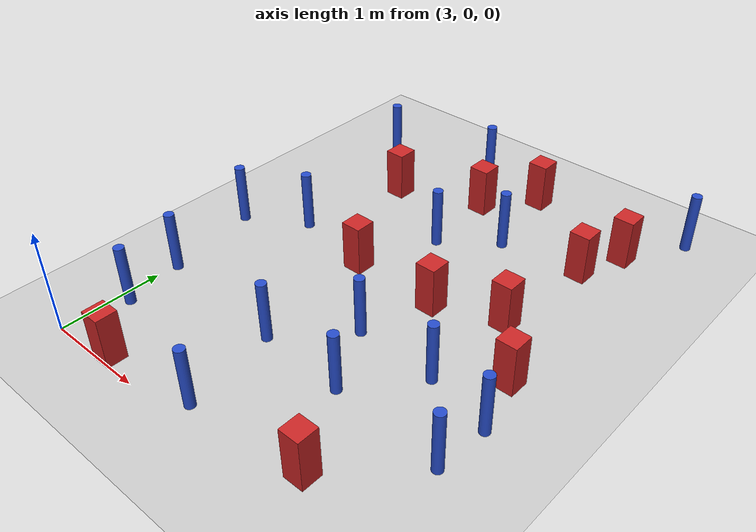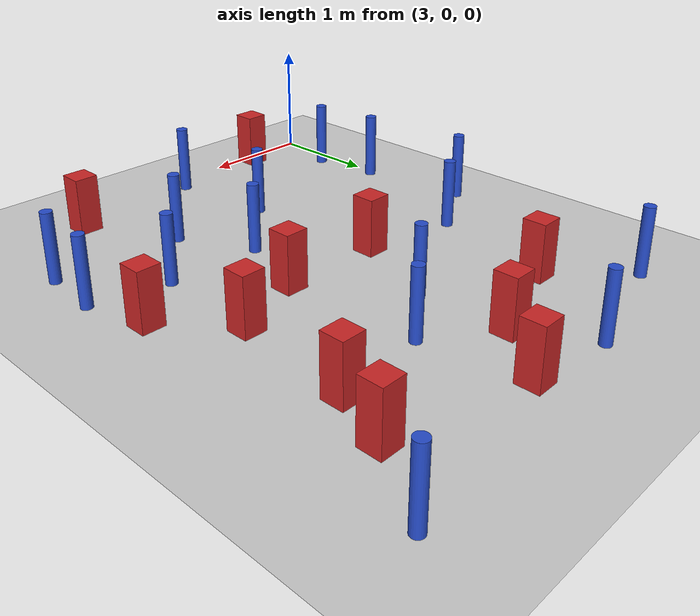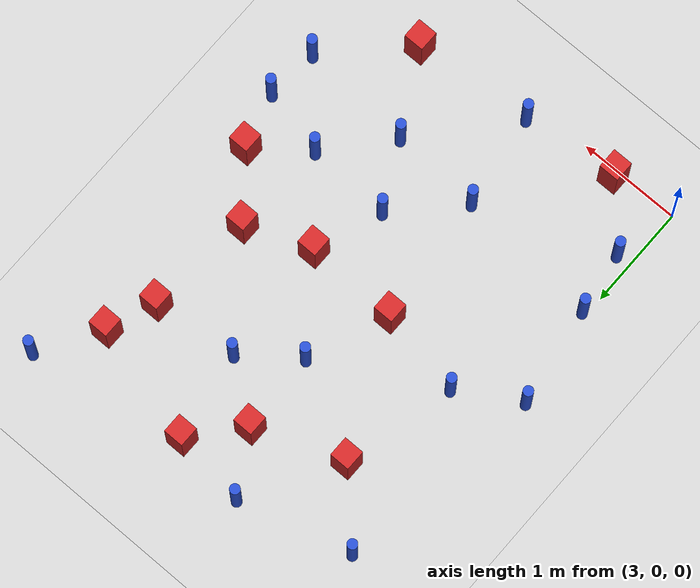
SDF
<sdf version="1.6">
 <world name="default">
  <model name="ground_plane">
   <static>1</static>
   <link name="link">
    <collision name="collision">
     <geometry><plane><normal>0 0 1</normal><size>100 100</size></plane></geometry>
     <surface><friction><ode><mu>100</mu><mu2>50</mu2></ode></friction></surface>
    </collision>
    <visual name="visual">
     <cast_shadows>0</cast_shadows>
     <geometry><plane><normal>0 0 1</normal><size>100 100</size></plane></geometry>
     <material>
      <ambient>1.0 1.0 1.0 1.0</ambient>
      <diffuse>0.8 0.8 0.8 1.0</diffuse>
      <specular>0.01 0.01 0.01 1.000000</specular>
     </material>
    </visual>
   </link>
  </model>
  <model name="pole_obstacle8">
   <static>true</static>
   <pose>4.41853651223 1.09801838335 -9.47619616065e-06 5.49618799738e-07 2.36310414071e-07 -1.55090534796e-07</pose>
   <link name="link">
    <pose>0 0 0.3 0 -0 0</pose>
    <inertial>
     <mass>1</mass>
     <inertia><ixx>0.145833</ixx><ixy>0</ixy><ixz>0</ixz><iyy>0.145833</iyy><iyz>0</iyz><izz>0.125</izz></inertia>
    </inertial>
    <collision name="collision">
     <geometry><cylinder><radius>0.05</radius><length>.6</length></cylinder></geometry>
    </collision>
    <visual name="visual">
     <geometry><cylinder><radius>0.05</radius><length>.6</length></cylinder></geometry>
     <material>
      <script><name>Gazebo/Blue</name><uri>file://media/materials/scripts/gazebo.material</uri></script>
     </material>
    </visual>
   </link>
  </model>
  <model name="square_post_obstacle24">
   <static>true</static>
   <pose>4.30198293495 2.35617730267 -6.11067671241e-07 -5.50515727128e-06 -8.79689657224e-07 2.37013304536e-05</pose>
   <link name="link">
    <pose>0 0 0.25 0 -0 0</pose>
    <inertial>
     <mass>100</mass>
     <inertia>
      <ixx>0.166667</ixx>
      <ixy>0</ixy>
      <ixz>0</ixz>
      <iyy>0.166667</iyy>
      <iyz>0</iyz>
      <izz>0.166667</izz>
     </inertia>
    </inertial>
    <collision name="collision"><geometry><box><size>.2 .2 .5</size></box></geometry></collision>
    <visual name="visual">
     <geometry><box><size>.2 .2 .5</size></box></geometry>
     <material>
      <script><name>Gazebo/Red</name><uri>file://media/materials/scripts/gazebo.material</uri></script>
     </material>
    </visual>
   </link>
  </model>
  <model name="square_post_obstacle28">
   <static>true</static>
   <pose>4.96574600344 4.38186019826 -6.11067671241e-07 -5.50515727128e-06 -8.79689657224e-07 2.37013304536e-05</pose>
   <link name="link">
    <pose>0 0 0.25 0 -0 0</pose>
    <inertial>
     <mass>100</mass>
     <inertia>
      <ixx>0.166667</ixx>
      <ixy>0</ixy>
      <ixz>0</ixz>
      <iyy>0.166667</iyy>
      <iyz>0</iyz>
      <izz>0.166667</izz>
     </inertia>
    </inertial>
    <collision name="collision"><geometry><box><size>.2 .2 .5</size></box></geometry></collision>
    <visual name="visual">
     <geometry><box><size>.2 .2 .5</size></box></geometry>
     <material>
      <script><name>Gazebo/Red</name><uri>file://media/materials/scripts/gazebo.material</uri></script>
     </material>
    </visual>
   </link>
  </model>
  <model name="pole_obstacle25">
   <static>true</static>
   <pose>3.03722277193 1.20850535161 -9.47619616065e-06 5.49618799737e-07 2.36310414072e-07 -1.55090534793e-07</pose>
   <link name="link">
    <pose>0 0 0.3 0 -0 0</pose>
    <inertial>
     <mass>1</mass>
     <inertia><ixx>0.145833</ixx><ixy>0</ixy><ixz>0</ixz><iyy>0.145833</iyy><iyz>0</iyz><izz>0.125</izz></inertia>
    </inertial>
    <collision name="collision">
     <geometry><cylinder><radius>0.05</radius><length>.6</length></cylinder></geometry>
    </collision>
    <visual name="visual">
     <geometry><cylinder><radius>0.05</radius><length>.6</length></cylinder></geometry>
     <material>
      <script><name>Gazebo/Blue</name><uri>file://media/materials/scripts/gazebo.material</uri></script>
     </material>
    </visual>
   </link>
  </model>
  <model name="pole_obstacle43">
   <static>true</static>
   <pose>2.88424724772 2.16712554743 -9.47619616065e-06 5.49618799737e-07 2.36310414051e-07 -1.55090534807e-07</pose>
   <link name="link">
    <pose>0 0 0.3 0 -0 0</pose>
    <inertial>
     <mass>1</mass>
     <inertia><ixx>0.145833</ixx><ixy>0</ixy><ixz>0</ixz><iyy>0.145833</iyy><iyz>0</iyz><izz>0.125</izz></inertia>
    </inertial>
    <collision name="collision">
     <geometry><cylinder><radius>0.05</radius><length>.6</length></cylinder></geometry>
    </collision>
    <visual name="visual">
     <geometry><cylinder><radius>0.05</radius><length>.6</length></cylinder></geometry>
     <material>
      <script><name>Gazebo/Blue</name><uri>file://media/materials/scripts/gazebo.material</uri></script>
     </material>
    </visual>
   </link>
  </model>
  <model name="square_post_obstacle44">
   <static>true</static>
   <pose>3.73400157712 3.59948972033 -6.11067671241e-07 -5.50515727128e-06 -8.79689657224e-07 2.37013304536e-05</pose>
   <link name="link">
    <pose>0 0 0.25 0 -0 0</pose>
    <inertial>
     <mass>100</mass>
     <inertia>
      <ixx>0.166667</ixx>
      <ixy>0</ixy>
      <ixz>0</ixz>
      <iyy>0.166667</iyy>
      <iyz>0</iyz>
      <izz>0.166667</izz>
     </inertia>
    </inertial>
    <collision name="collision"><geometry><box><size>.2 .2 .5</size></box></geometry></collision>
    <visual name="visual">
     <geometry><box><size>.2 .2 .5</size></box></geometry>
     <material>
      <script><name>Gazebo/Red</name><uri>file://media/materials/scripts/gazebo.material</uri></script>
     </material>
    </visual>
   </link>
  </model>
  <model name="square_post_obstacle52">
   <static>true</static>
   <pose>5.82720724488 2.58055464739 -6.11067671241e-07 -5.50515727128e-06 -8.79689657224e-07 2.37013304536e-05</pose>
   <link name="link">
    <pose>0 0 0.25 0 -0 0</pose>
    <inertial>
     <mass>100</mass>
     <inertia>
      <ixx>0.166667</ixx>
      <ixy>0</ixy>
      <ixz>0</ixz>
      <iyy>0.166667</iyy>
      <iyz>0</iyz>
      <izz>0.166667</izz>
     </inertia>
    </inertial>
    <collision name="collision"><geometry><box><size>.2 .2 .5</size></box></geometry></collision>
    <visual name="visual">
     <geometry><box><size>.2 .2 .5</size></box></geometry>
     <material>
      <script><name>Gazebo/Red</name><uri>file://media/materials/scripts/gazebo.material</uri></script>
     </material>
    </visual>
   </link>
  </model>
  <model name="square_post_obstacle64">
   <static>true</static>
   <pose>5.71152525341 0.291582715641 -6.11067671241e-07 -5.50515727128e-06 -8.79689657224e-07 2.37013304536e-05</pose>
   <link name="link">
    <pose>0 0 0.25 0 -0 0</pose>
    <inertial>
     <mass>100</mass>
     <inertia>
      <ixx>0.166667</ixx>
      <ixy>0</ixy>
      <ixz>0</ixz>
      <iyy>0.166667</iyy>
      <iyz>0</iyz>
      <izz>0.166667</izz>
     </inertia>
    </inertial>
    <collision name="collision"><geometry><box><size>.2 .2 .5</size></box></geometry></collision>
    <visual name="visual">
     <geometry><box><size>.2 .2 .5</size></box></geometry>
     <material>
      <script><name>Gazebo/Red</name><uri>file://media/materials/scripts/gazebo.material</uri></script>
     </material>
    </visual>
   </link>
  </model>
  <model name="square_post_obstacle72">
   <static>true</static>
   <pose>3.62497617091 0.0828882321645 -6.11067671241e-07 -5.50515727128e-06 -8.79689657224e-07 2.37013304536e-05</pose>
   <link name="link">
    <pose>0 0 0.25 0 -0 0</pose>
    <inertial>
     <mass>100</mass>
     <inertia>
      <ixx>0.166667</ixx>
      <ixy>0</ixy>
      <ixz>0</ixz>
      <iyy>0.166667</iyy>
      <iyz>0</iyz>
      <izz>0.166667</izz>
     </inertia>
    </inertial>
    <collision name="collision"><geometry><box><size>.2 .2 .5</size></box></geometry></collision>
    <visual name="visual">
     <geometry><box><size>.2 .2 .5</size></box></geometry>
     <material>
      <script><name>Gazebo/Red</name><uri>file://media/materials/scripts/gazebo.material</uri></script>
     </material>
    </visual>
   </link>
  </model>
  <model name="pole_obstacle70">
   <static>true</static>
   <pose>3.13463753691 0.613771474882 -9.47619616065e-06 5.49618799738e-07 2.36310414075e-07 -1.55090534793e-07</pose>
   <link name="link">
    <pose>0 0 0.3 0 -0 0</pose>
    <inertial>
     <mass>1</mass>
     <inertia><ixx>0.145833</ixx><ixy>0</ixy><ixz>0</ixz><iyy>0.145833</iyy><iyz>0</iyz><izz>0.125</izz></inertia>
    </inertial>
    <collision name="collision">
     <geometry><cylinder><radius>0.05</radius><length>.6</length></cylinder></geometry>
    </collision>
    <visual name="visual">
     <geometry><cylinder><radius>0.05</radius><length>.6</length></cylinder></geometry>
     <material>
      <script><name>Gazebo/Blue</name><uri>file://media/materials/scripts/gazebo.material</uri></script>
     </material>
    </visual>
   </link>
  </model>
  <model name="pole_obstacle72">
   <static>true</static>
   <pose>5.78718243944 1.64303371063 -9.47619616065e-06 5.49618799738e-07 2.36310414071e-07 -1.55090534796e-07</pose>
   <link name="link">
    <pose>0 0 0.3 0 -0 0</pose>
    <inertial>
     <mass>1</mass>
     <inertia><ixx>0.145833</ixx><ixy>0</ixy><ixz>0</ixz><iyy>0.145833</iyy><iyz>0</iyz><izz>0.125</izz></inertia>
    </inertial>
    <collision name="collision">
     <geometry><cylinder><radius>0.05</radius><length>.6</length></cylinder></geometry>
    </collision>
    <visual name="visual">
     <geometry><cylinder><radius>0.05</radius><length>.6</length></cylinder></geometry>
     <material>
      <script><name>Gazebo/Blue</name><uri>file://media/materials/scripts/gazebo.material</uri></script>
     </material>
    </visual>
   </link>
  </model>
  <model name="pole_obstacle75">
   <static>true</static>
   <pose>6.43466897531 1.48794062232 -9.47619616065e-06 5.49618799738e-07 2.36310414071e-07 -1.55090534796e-07</pose>
   <link name="link">
    <pose>0 0 0.3 0 -0 0</pose>
    <inertial>
     <mass>1</mass>
     <inertia><ixx>0.145833</ixx><ixy>0</ixy><ixz>0</ixz><iyy>0.145833</iyy><iyz>0</iyz><izz>0.125</izz></inertia>
    </inertial>
    <collision name="collision">
     <geometry><cylinder><radius>0.05</radius><length>.6</length></cylinder></geometry>
    </collision>
    <visual name="visual">
     <geometry><cylinder><radius>0.05</radius><length>.6</length></cylinder></geometry>
     <material>
      <script><name>Gazebo/Blue</name><uri>file://media/materials/scripts/gazebo.material</uri></script>
     </material>
    </visual>
   </link>
  </model>
  <model name="pole_obstacle102">
   <static>true</static>
   <pose>4.55397835697 0.181711562981 -9.47619616065e-06 5.49618799738e-07 2.36310414072e-07 -1.55090534795e-07</pose>
   <link name="link">
    <pose>0 0 0.3 0 -0 0</pose>
    <inertial>
     <mass>1</mass>
     <inertia><ixx>0.145833</ixx><ixy>0</ixy><ixz>0</ixz><iyy>0.145833</iyy><iyz>0</iyz><izz>0.125</izz></inertia>
    </inertial>
    <collision name="collision">
     <geometry><cylinder><radius>0.05</radius><length>.6</length></cylinder></geometry>
    </collision>
    <visual name="visual">
     <geometry><cylinder><radius>0.05</radius><length>.6</length></cylinder></geometry>
     <material>
      <script><name>Gazebo/Blue</name><uri>file://media/materials/scripts/gazebo.material</uri></script>
     </material>
    </visual>
   </link>
  </model>
  <model name="pole_obstacle108">
   <static>true</static>
   <pose>5.29012515883 1.05420977932 -9.47619616065e-06 5.49618799738e-07 2.36310414071e-07 -1.55090534796e-07</pose>
   <link name="link">
    <pose>0 0 0.3 0 -0 0</pose>
    <inertial>
     <mass>1</mass>
     <inertia><ixx>0.145833</ixx><ixy>0</ixy><ixz>0</ixz><iyy>0.145833</iyy><iyz>0</iyz><izz>0.125</izz></inertia>
    </inertial>
    <collision name="collision">
     <geometry><cylinder><radius>0.05</radius><length>.6</length></cylinder></geometry>
    </collision>
    <visual name="visual">
     <geometry><cylinder><radius>0.05</radius><length>.6</length></cylinder></geometry>
     <material>
      <script><name>Gazebo/Blue</name><uri>file://media/materials/scripts/gazebo.material</uri></script>
     </material>
    </visual>
   </link>
  </model>
  <model name="pole_obstacle122">
   <static>true</static>
   <pose>3.46630462649 2.51066067518 -9.47619616065e-06 5.49618799737e-07 2.36310414051e-07 -1.55090534807e-07</pose>
   <link name="link">
    <pose>0 0 0.3 0 -0 0</pose>
    <inertial>
     <mass>1</mass>
     <inertia><ixx>0.145833</ixx><ixy>0</ixy><ixz>0</ixz><iyy>0.145833</iyy><iyz>0</iyz><izz>0.125</izz></inertia>
    </inertial>
    <collision name="collision">
     <geometry><cylinder><radius>0.05</radius><length>.6</length></cylinder></geometry>
    </collision>
    <visual name="visual">
     <geometry><cylinder><radius>0.05</radius><length>.6</length></cylinder></geometry>
     <material>
      <script><name>Gazebo/Blue</name><uri>file://media/materials/scripts/gazebo.material</uri></script>
     </material>
    </visual>
   </link>
  </model>
  <model name="pole_obstacle127">
   <static>true</static>
   <pose>4.61040201455 3.13350236156 -9.47619616065e-06 5.49618799738e-07 2.36310414051e-07 -1.55090534805e-07</pose>
   <link name="link">
    <pose>0 0 0.3 0 -0 0</pose>
    <inertial>
     <mass>1</mass>
     <inertia><ixx>0.145833</ixx><ixy>0</ixy><ixz>0</ixz><iyy>0.145833</iyy><iyz>0</iyz><izz>0.125</izz></inertia>
    </inertial>
    <collision name="collision">
     <geometry><cylinder><radius>0.05</radius><length>.6</length></cylinder></geometry>
    </collision>
    <visual name="visual">
     <geometry><cylinder><radius>0.05</radius><length>.6</length></cylinder></geometry>
     <material>
      <script><name>Gazebo/Blue</name><uri>file://media/materials/scripts/gazebo.material</uri></script>
     </material>
    </visual>
   </link>
  </model>
  <model name="pole_obstacle128">
   <static>true</static>
   <pose>6.47933604878 4.66308630779 -9.47619616065e-06 5.49618799737e-07 2.36310414037e-07 -1.55090534814e-07</pose>
   <link name="link">
    <pose>0 0 0.3 0 -0 0</pose>
    <inertial>
     <mass>1</mass>
     <inertia><ixx>0.145833</ixx><ixy>0</ixy><ixz>0</ixz><iyy>0.145833</iyy><iyz>0</iyz><izz>0.125</izz></inertia>
    </inertial>
    <collision name="collision">
     <geometry><cylinder><radius>0.05</radius><length>.6</length></cylinder></geometry>
    </collision>
    <visual name="visual">
     <geometry><cylinder><radius>0.05</radius><length>.6</length></cylinder></geometry>
     <material>
      <script><name>Gazebo/Blue</name><uri>file://media/materials/scripts/gazebo.material</uri></script>
     </material>
    </visual>
   </link>
  </model>
  <model name="square_post_obstacle114">
   <static>true</static>
   <pose>5.93451149578 3.61341287417 -6.11067671241e-07 -5.50515727128e-06 -8.79689657224e-07 2.37013304536e-05</pose>
   <link name="link">
    <pose>0 0 0.25 0 -0 0</pose>
    <inertial>
     <mass>100</mass>
     <inertia>
      <ixx>0.166667</ixx>
      <ixy>0</ixy>
      <ixz>0</ixz>
      <iyy>0.166667</iyy>
      <iyz>0</iyz>
      <izz>0.166667</izz>
     </inertia>
    </inertial>
    <collision name="collision"><geometry><box><size>.2 .2 .5</size></box></geometry></collision>
    <visual name="visual">
     <geometry><box><size>.2 .2 .5</size></box></geometry>
     <material>
      <script><name>Gazebo/Red</name><uri>file://media/materials/scripts/gazebo.material</uri></script>
     </material>
    </visual>
   </link>
  </model>
  <model name="pole_obstacle138">
   <static>true</static>
   <pose>4.24809309247 4.48216020755 -9.47619616065e-06 5.49618799737e-07 2.36310414037e-07 -1.55090534814e-07</pose>
   <link name="link">
    <pose>0 0 0.3 0 -0 0</pose>
    <inertial>
     <mass>1</mass>
     <inertia><ixx>0.145833</ixx><ixy>0</ixy><ixz>0</ixz><iyy>0.145833</iyy><iyz>0</iyz><izz>0.125</izz></inertia>
    </inertial>
    <collision name="collision">
     <geometry><cylinder><radius>0.05</radius><length>.6</length></cylinder></geometry>
    </collision>
    <visual name="visual">
     <geometry><cylinder><radius>0.05</radius><length>.6</length></cylinder></geometry>
     <material>
      <script><name>Gazebo/Blue</name><uri>file://media/materials/scripts/gazebo.material</uri></script>
     </material>
    </visual>
   </link>
  </model>
  <model name="pole_obstacle142">
   <static>true</static>
   <pose>5.11747221874 3.5224183653 -9.47619616065e-06 5.49618799738e-07 2.36310414051e-07 -1.55090534805e-07</pose>
   <link name="link">
    <pose>0 0 0.3 0 -0 0</pose>
    <inertial>
     <mass>1</mass>
     <inertia><ixx>0.145833</ixx><ixy>0</ixy><ixz>0</ixz><iyy>0.145833</iyy><iyz>0</iyz><izz>0.125</izz></inertia>
    </inertial>
    <collision name="collision">
     <geometry><cylinder><radius>0.05</radius><length>.6</length></cylinder></geometry>
    </collision>
    <visual name="visual">
     <geometry><cylinder><radius>0.05</radius><length>.6</length></cylinder></geometry>
     <material>
      <script><name>Gazebo/Blue</name><uri>file://media/materials/scripts/gazebo.material</uri></script>
     </material>
    </visual>
   </link>
  </model>
  <model name="square_post_obstacle138">
   <static>true</static>
   <pose>6.27916279648 2.01748817516 -6.11067671241e-07 -5.50515727128e-06 -8.79689657224e-07 2.37013304536e-05</pose>
   <link name="link">
    <pose>0 0 0.25 0 -0 0</pose>
    <inertial>
     <mass>100</mass>
     <inertia>
      <ixx>0.166667</ixx>
      <ixy>0</ixy>
      <ixz>0</ixz>
      <iyy>0.166667</iyy>
      <iyz>0</iyz>
      <izz>0.166667</izz>
     </inertia>
    </inertial>
    <collision name="collision"><geometry><box><size>.2 .2 .5</size></box></geometry></collision>
    <visual name="visual">
     <geometry><box><size>.2 .2 .5</size></box></geometry>
     <material>
      <script><name>Gazebo/Red</name><uri>file://media/materials/scripts/gazebo.material</uri></script>
     </material>
    </visual>
   </link>
  </model>
  <model name="pole_obstacle152">
   <static>true</static>
   <pose>3.16507642304 4.18569952789 -9.47619616065e-06 5.49618799738e-07 2.3631041406e-07 -1.55090534801e-07</pose>
   <link name="link">
    <pose>0 0 0.3 0 -0 0</pose>
    <inertial>
     <mass>1</mass>
     <inertia><ixx>0.145833</ixx><ixy>0</ixy><ixz>0</ixz><iyy>0.145833</iyy><iyz>0</iyz><izz>0.125</izz></inertia>
    </inertial>
    <collision name="collision">
     <geometry><cylinder><radius>0.05</radius><length>.6</length></cylinder></geometry>
    </collision>
    <visual name="visual">
     <geometry><cylinder><radius>0.05</radius><length>.6</length></cylinder></geometry>
     <material>
      <script><name>Gazebo/Blue</name><uri>file://media/materials/scripts/gazebo.material</uri></script>
     </material>
    </visual>
   </link>
  </model>
  <model name="pole_obstacle153">
   <static>true</static>
   <pose>4.96935872024 1.67781594864 -9.47619616065e-06 5.49618799738e-07 2.36310414071e-07 -1.55090534796e-07</pose>
   <link name="link">
    <pose>0 0 0.3 0 -0 0</pose>
    <inertial>
     <mass>1</mass>
     <inertia><ixx>0.145833</ixx><ixy>0</ixy><ixz>0</ixz><iyy>0.145833</iyy><iyz>0</iyz><izz>0.125</izz></inertia>
    </inertial>
    <collision name="collision">
     <geometry><cylinder><radius>0.05</radius><length>.6</length></cylinder></geometry>
    </collision>
    <visual name="visual">
     <geometry><cylinder><radius>0.05</radius><length>.6</length></cylinder></geometry>
     <material>
      <script><name>Gazebo/Blue</name><uri>file://media/materials/scripts/gazebo.material</uri></script>
     </material>
    </visual>
   </link>
  </model>
  <model name="square_post_obstacle147">
   <static>true</static>
   <pose>6.11064458215 4.08158015176 -6.11067671241e-07 -5.50515727128e-06 -8.79689657224e-07 2.37013304536e-05</pose>
   <link name="link">
    <pose>0 0 0.25 0 -0 0</pose>
    <inertial>
     <mass>100</mass>
     <inertia>
      <ixx>0.166667</ixx>
      <ixy>0</ixy>
      <ixz>0</ixz>
      <iyy>0.166667</iyy>
      <iyz>0</iyz>
      <izz>0.166667</izz>
     </inertia>
    </inertial>
    <collision name="collision"><geometry><box><size>.2 .2 .5</size></box></geometry></collision>
    <visual name="visual">
     <geometry><box><size>.2 .2 .5</size></box></geometry>
     <material>
      <script><name>Gazebo/Red</name><uri>file://media/materials/scripts/gazebo.material</uri></script>
     </material>
    </visual>
   </link>
  </model>
  <model name="square_post_obstacle159">
   <static>true</static>
   <pose>4.57440279329 3.9169239677 -6.11067671241e-07 -5.50515727128e-06 -8.79689657224e-07 2.37013304536e-05</pose>
   <link name="link">
    <pose>0 0 0.25 0 -0 0</pose>
    <inertial>
     <mass>100</mass>
     <inertia>
      <ixx>0.166667</ixx>
      <ixy>0</ixy>
      <ixz>0</ixz>
      <iyy>0.166667</iyy>
      <iyz>0</iyz>
      <izz>0.166667</izz>
     </inertia>
    </inertial>
    <collision name="collision"><geometry><box><size>.2 .2 .5</size></box></geometry></collision>
    <visual name="visual">
     <geometry><box><size>.2 .2 .5</size></box></geometry>
     <material>
      <script><name>Gazebo/Red</name><uri>file://media/materials/scripts/gazebo.material</uri></script>
     </material>
    </visual>
   </link>
  </model>
  <model name="pole_obstacle172">
   <static>true</static>
   <pose>6.39584902277 0.975077648064 -9.47619616065e-06 5.49618799737e-07 2.36310414073e-07 -1.55090534792e-07</pose>
   <link name="link">
    <pose>0 0 0.3 0 -0 0</pose>
    <inertial>
     <mass>1</mass>
     <inertia><ixx>0.145833</ixx><ixy>0</ixy><ixz>0</ixz><iyy>0.145833</iyy><iyz>0</iyz><izz>0.125</izz></inertia>
    </inertial>
    <collision name="collision">
     <geometry><cylinder><radius>0.05</radius><length>.6</length></cylinder></geometry>
    </collision>
    <visual name="visual">
     <geometry><cylinder><radius>0.05</radius><length>.6</length></cylinder></geometry>
     <material>
      <script><name>Gazebo/Blue</name><uri>file://media/materials/scripts/gazebo.material</uri></script>
     </material>
    </visual>
   </link>
  </model>
  <model name="square_post_obstacle195">
   <static>true</static>
   <pose>5.19935821907 2.34052569864 -6.11067671241e-07 -5.50515727128e-06 -8.79689657224e-07 2.37013304536e-05</pose>
   <link name="link">
    <pose>0 0 0.25 0 -0 0</pose>
    <inertial>
     <mass>100</mass>
     <inertia>
      <ixx>0.166667</ixx>
      <ixy>0</ixy>
      <ixz>0</ixz>
      <iyy>0.166667</iyy>
      <iyz>0</iyz>
      <izz>0.166667</izz>
     </inertia>
    </inertial>
    <collision name="collision"><geometry><box><size>.2 .2 .5</size></box></geometry></collision>
    <visual name="visual">
     <geometry><box><size>.2 .2 .5</size></box></geometry>
     <material>
      <script><name>Gazebo/Red</name><uri>file://media/materials/scripts/gazebo.material</uri></script>
     </material>
    </visual>
   </link>
  </model>
 </world>
</sdf>
